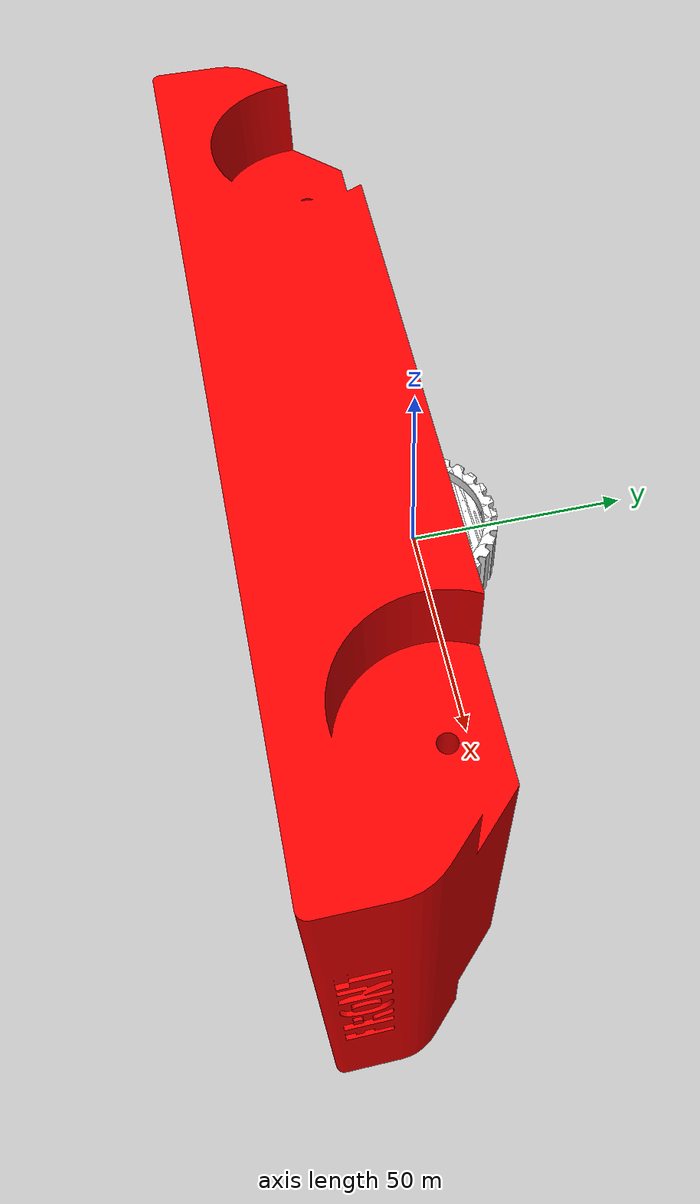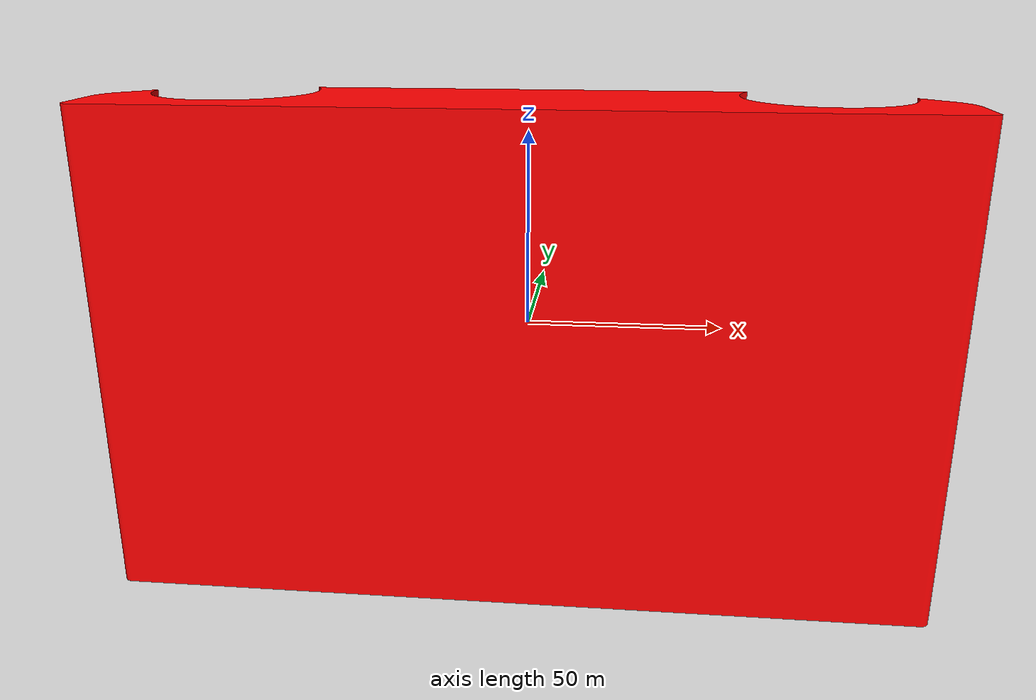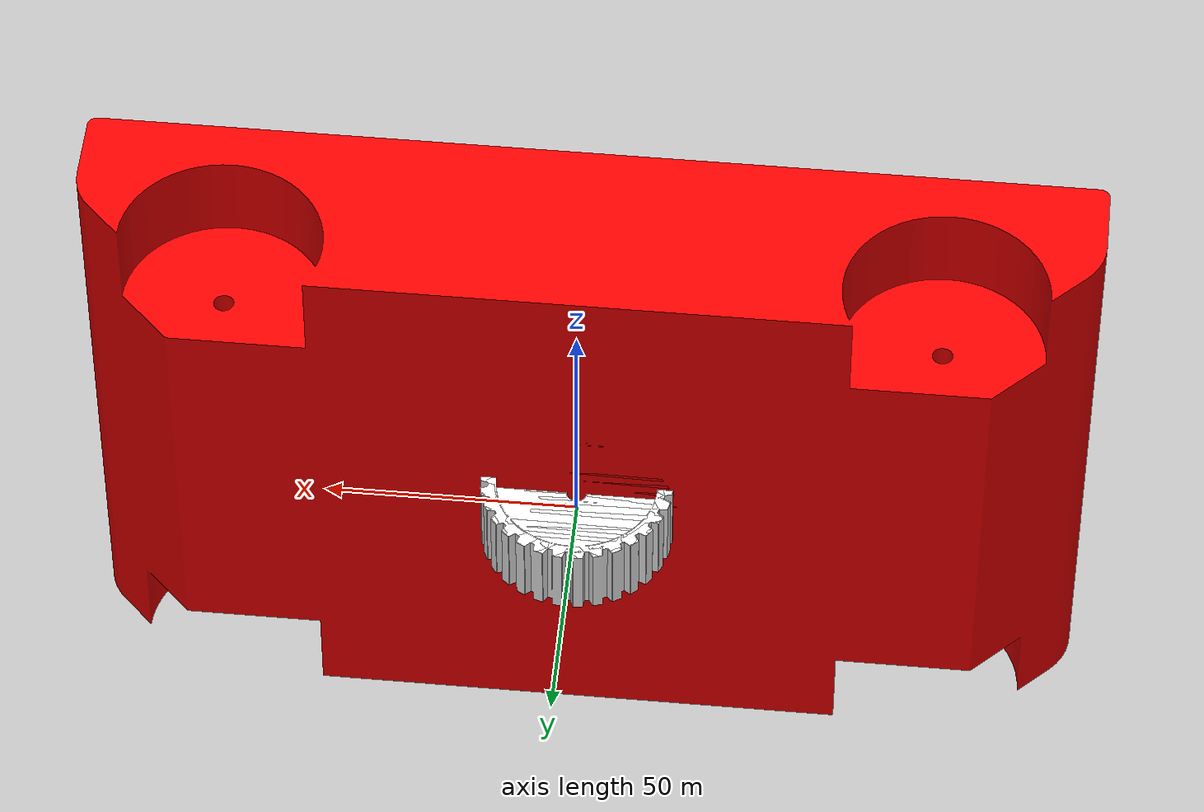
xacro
<?xml version="1.0"?>
<robot xmlns:xacro="http://www.ros.org/wiki/xacro" name="ugv">
<xacro:property name="mainBody" value= "package://ugv/mesh/mainBody.stl"/>
<xacro:property name="wheel" value= "package://ugv/mesh/tyre.stl"/>
<xacro:property name="lidar" value= "package://ugv/mesh/lidar.stl"/>
<xacro:property name="shaft" value= "package://ugv/mesh/shaft.stl"/>
<xacro:property name="scale" value = "1 1 1"/>

<xacro:macro name="wheel" params="name">
    <link name="${name}">
    <visual>
        <origin xyz="0.0 0.0 0.009" rpy="1.57 0.0 0.0"/>
        <geometry>
            <mesh filename="${wheel}" scale="${scale}"/>
        </geometry>
        <material name="black"/>
    </visual>
    <inertial>
        <mass value="0.2"/>
        <inertia ixx ="0.00695" iyy ="0.00695" izz ="0.01203" ixy = '0.0' ixz = '0.0' iyz = '0.0'/>
    </inertial>
    <gazebo>
        <mu>1.0</mu>
        <mu2>0.8</mu2>
        <material>Gazebo/Black</material>
    </gazebo>

</link>
</xacro:macro>

<xacro:wheel name="wheelBL"/>
<xacro:wheel name="wheelFL"/>
<xacro:wheel name="wheelFR"/>
<xacro:wheel name="wheelBR"/>

<material name="black">
    <color rgba="1 1 1 1.0"/>
</material>

<material name="grey">
    <color rgba="1 0.0 0.0 1.0"/>
</material>

<link name="base_link">
    <visual>
        <origin xyz="0.0 0.0 0.009" rpy="1.57 0.0 0.0"/>
        <geometry>
            <mesh filename="${mainBody}" scale= "${scale}"/>
        </geometry>
        <material name="grey"/>
    </visual>
    <inertial>
        <mass value="0.2"/>
        <inertia ixx ="0.067" iyy ="0.227" izz ="0.173" ixy = '0.0' ixz = '0.0' iyz = '0.0'/>
    </inertial>
    <gazebo>
        <mu>1.0</mu>
        <mu2>0.8</mu2>
        <material>Gazebo/Black</material>
    </gazebo>
</link>

<link name="lidar">
    <visual>
        <origin xyz="0.0 0.0 0.009" rpy="1.57 0.0 0.0"/>
        <geometry>
            <mesh filename="${lidar}" scale= "${scale}"/>
        </geometry>
        <material name="grey"/>
    </visual>
</link>

<link name="shaftF">
    <visual>
        <origin xyz="0.0 0.0 0.009" rpy="1.57 0.0 0.0"/>
        <geometry>
            <mesh filename="${shaft}" scale= "${scale}"/>
        </geometry>
        <material name="grey"/>
    </visual>
</link>

<link name="shaftB">
    <visual>
        <origin xyz="0.0 0.0 0.009" rpy="1.57 0.0 0.0"/>
        <geometry>
            <mesh filename="${shaft}" scale= "${scale}"/>
        </geometry>
        <material name="grey"/>
    </visual>
</link>

<joint name="mainBody_shaftF" type="fixed">
    <parent link="base_link"/>
    <child link="shaftF"/>
    <origin xyz="0.07 0 0.0105" rpy="0.0 0.0 0.0"/>
</joint>

<joint name="mainBody_shaftB" type="fixed">
    <parent link="base_link"/>
    <child link="shaftB"/>
    <origin xyz="-0.07 0 0.0105" rpy="0.0 0.0 0.0"/>
</joint>

<joint name="mainBody_WheelBL" type="continuous">
    <parent link="base_link"/>
    <child link="wheelBL"/>
    <origin xyz="-0.07 0.0525 0.01" rpy="0.0 0.0 0.0"/>
    <axis xyz="0 1 0"/>
    <limit lower="0" upper="0" effort="0" velocity="0"/>
</joint>

<joint name="mainBody_WheelFL" type="continuous">
    <parent link="base_link"/>
    <child link="wheelFL"/>
    <origin xyz="0.07 0.0525 0.010" rpy="0.0 0.0 0.0"/>
    <axis xyz="0 1 0"/>
    <limit lower="0" upper="0" effort="0" velocity="0"/>
</joint>

<joint name="mainBody_WheelFR" type="continuous">
    <parent link="base_link"/>
    <child link="wheelFR"/>
    <origin xyz="0.07 -0.0525 0.010" rpy="0.0 0.0 0.0"/>
    <axis xyz="0 1 0"/>
    <limit lower="0" upper="0" effort="0" velocity="0"/>
</joint>

<joint name="mainBody_WheelBR" type="continuous">
    <parent link="base_link"/>
    <child link="wheelBR"/>
    <origin xyz="-0.07 -0.0525 0.010" rpy="0.0 0.0 0.0"/>
    <axis xyz="0 1 0"/>
    <limit lower="0" upper="0" effort="0" velocity="0"/>
</joint>

<joint name="mainBody_Lidar" type="fixed">
    <parent link="base_link"/>
    <child link="lidar"/>
    <origin xyz="0.075 0 0.04" rpy="0.0 0.0 0.0"/>
</joint>

</robot>
